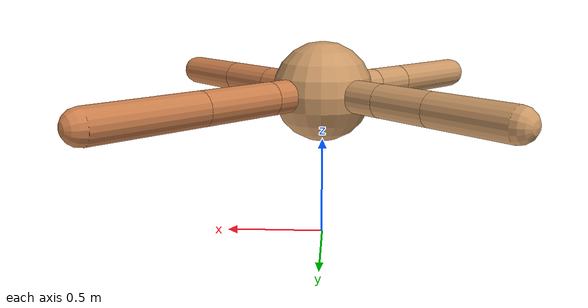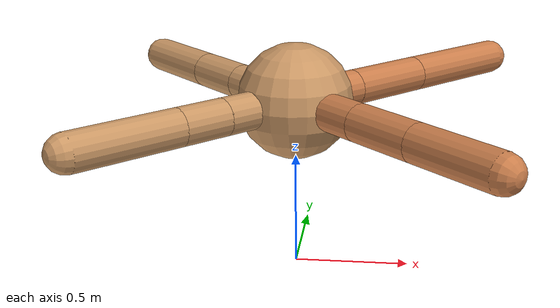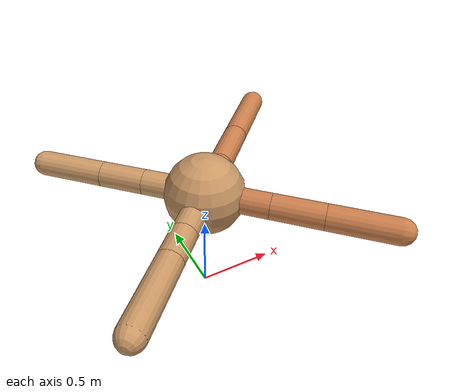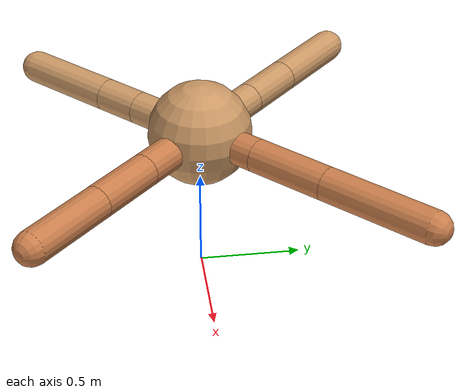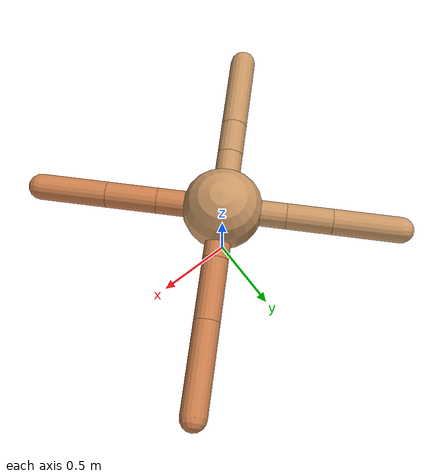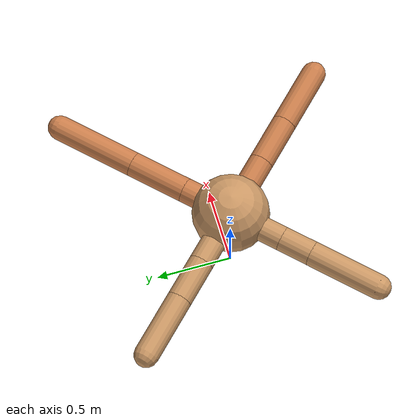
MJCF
<mujoco model="ant">
  <compiler angle="degree" coordinate="local" inertiafromgeom="true" />
  <option integrator="RK4" timestep="0.01" />
  <custom>
    <numeric data="0.0 0.0 0.55 1.0 0.0 0.0 0.0 0.0 1.0 0.0 -1.0 0.0 -1.0 0.0 1.0" name="init_qpos" />
  </custom>
  <default>
    <joint armature="1" damping="1" limited="true" />
    <geom conaffinity="0" condim="3" density="5.0" friction="1.5 0.1 0.1" margin="0.01" rgba="0.8 0.6 0.4 1" />
  </default>
  <worldbody>
    <body name="torso" pos="0 0 0.75">
      <geom name="torso_geom" pos="0 0 0" size="0.25" type="sphere" />

      <body name="front_left_leg" pos="0 0 0">
        <geom fromto="0.0 0.0 0.0 0.2348736418276538 0.2348736418276538 0.0" name="aux_1_geom" size="0.08" type="capsule" rgba=".8 .5 .3 1" />
        <body name="aux_1" pos="0.2348736418276538 0.2348736418276538 0.0">
          <joint axis="0 0 1" name="hip_1" pos="0.0 0.0 0.0" range="-40 40" type="hinge" />
          <geom fromto="0.0 0.0 0.0 0.26854342580437696 0.26854342580437696 0.0" name="left_leg_geom" size="0.08" type="capsule" rgba=".8 .5 .3 1" />
          <body pos="0.26854342580437696 0.26854342580437696 0.0" name="front_left_foot">
            <joint axis="-1 1 0" name="ankle_1" pos="0.0 0.0 0.0" range="30 100" type="hinge" />
            <geom fromto="0.0 0.0 0.0 0.3842781233633621 0.3842781233633621 0.0" name="left_ankle_geom" size="0.08" type="capsule" rgba=".8 .5 .3 1" />
          </body>
        </body>
      </body>
      <body name="front_right_leg" pos="0 0 0">
        <geom fromto="0.0 0.0 0.0 -0.2762761848059778 0.2762761848059778 0.0" name="aux_2_geom" size="0.08" type="capsule" />
        <body name="aux_2" pos="-0.2762761848059778 0.2762761848059778 0.0">
          <joint axis="0 0 1" name="hip_2" pos="0.0 0.0 0.0" range="-40 40" type="hinge" />
          <geom fromto="0.0 0.0 0.0 -0.19971370143067013 0.19971370143067013 0.0" name="right_leg_geom" size="0.08" type="capsule" />
          <body pos="-0.19971370143067013 0.19971370143067013 0.0" name="front_right_foot">
            <joint axis="1 1 0" name="ankle_2" pos="0.0 0.0 0.0" range="-100 -30" type="hinge" />
            <geom fromto="0.0 0.0 0.0 -0.29497012385768717 0.29497012385768717 0.0" name="right_ankle_geom" size="0.08" type="capsule" />
          </body>
        </body>
      </body>
      <body name="left_back_leg" pos="0 0 0">
        <geom fromto="0.0 0.0 0.0 -0.26271416258433833 -0.26271416258433833 0.0" name="aux_3_geom" size="0.08" type="capsule" />
        <body name="aux_3" pos="-0.26271416258433833 -0.26271416258433833 0.0">
          <joint axis="0 0 1" name="hip_3" pos="0.0 0.0 0.0" range="-40 40" type="hinge" />
          <geom fromto="0.0 0.0 0.0 -0.14807438005807336 -0.14807438005807336 0.0" name="back_leg_geom" size="0.08" type="capsule" />
          <body pos="-0.14807438005807336 -0.14807438005807336 0.0" name="left_back_foot">
            <joint axis="-1 1 0" name="ankle_3" pos="0.0 0.0 0.0" range="-100 -30" type="hinge" />
            <geom fromto="0.0 0.0 0.0 -0.3346594962843112 -0.3346594962843112 0.0" name="third_ankle_geom" size="0.08" type="capsule" />
          </body>
        </body>
      </body>
      <body name="right_back_leg" pos="0 0 0">
        <geom fromto="0.0 0.0 0.0 0.28714689625000583 -0.28714689625000583 0.0" name="aux_4_geom" size="0.08" type="capsule" rgba=".8 .5 .3 1" />
        <body name="aux_4" pos="0.28714689625000583 -0.28714689625000583 0.0">
          <joint axis="0 0 1" name="hip_4" pos="0.0 0.0 0.0" range="-40 40" type="hinge" />
          <geom fromto="0.0 0.0 0.0 0.2229780381140341 -0.2229780381140341 0.0" name="rightback_leg_geom" size="0.08" type="capsule" rgba=".8 .5 .3 1" />
          <body pos="0.2229780381140341 -0.2229780381140341 0.0" name="right_back_foot">
            <joint axis="1 1 0" name="ankle_4" pos="0.0 0.0 0.0" range="30 100" type="hinge" />
            <geom fromto="0.0 0.0 0.0 0.2909976922454927 -0.2909976922454927 0.0" name="fourth_ankle_geom" size="0.08" type="capsule" rgba=".8 .5 .3 1" />
          </body>
        </body>
      </body>
    </body>
  </worldbody>
  <actuator>
    <motor ctrllimited="true" ctrlrange="-1.0 1.0" joint="hip_4" gear="150" />
    <motor ctrllimited="true" ctrlrange="-1.0 1.0" joint="ankle_4" gear="150" />
    <motor ctrllimited="true" ctrlrange="-1.0 1.0" joint="hip_1" gear="150" />
    <motor ctrllimited="true" ctrlrange="-1.0 1.0" joint="ankle_1" gear="150" />
    <motor ctrllimited="true" ctrlrange="-1.0 1.0" joint="hip_2" gear="150" />
    <motor ctrllimited="true" ctrlrange="-1.0 1.0" joint="ankle_2" gear="150" />
    <motor ctrllimited="true" ctrlrange="-1.0 1.0" joint="hip_3" gear="150" />
    <motor ctrllimited="true" ctrlrange="-1.0 1.0" joint="ankle_3" gear="150" />
  </actuator>
</mujoco>
